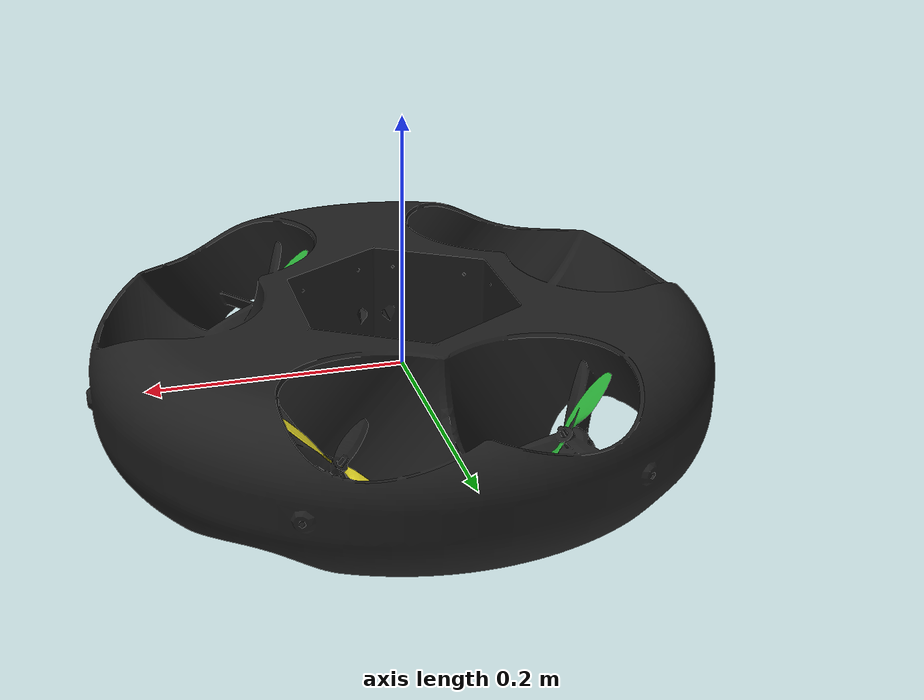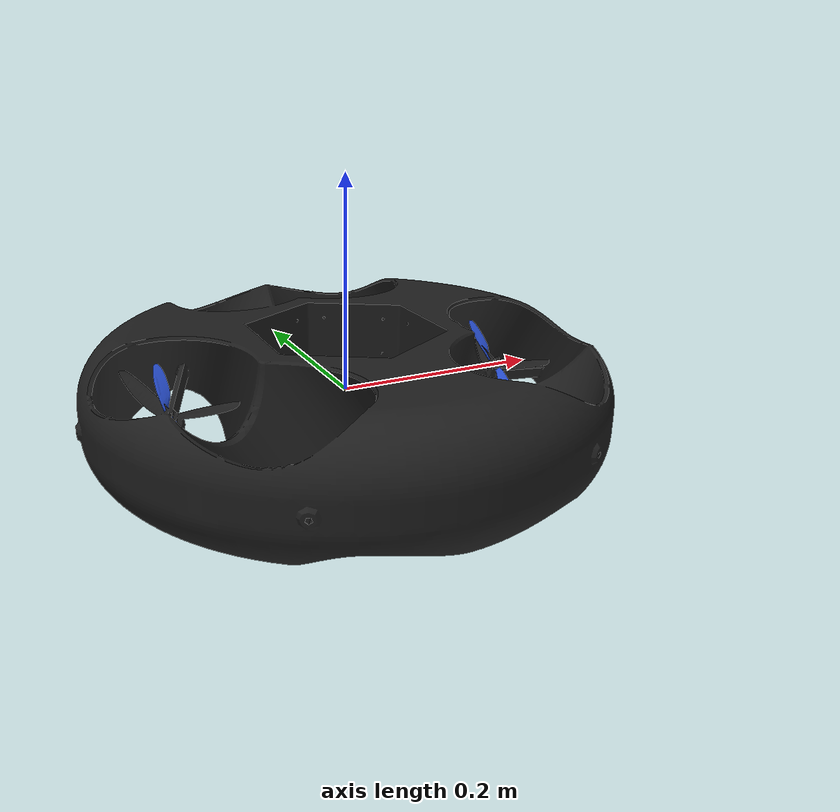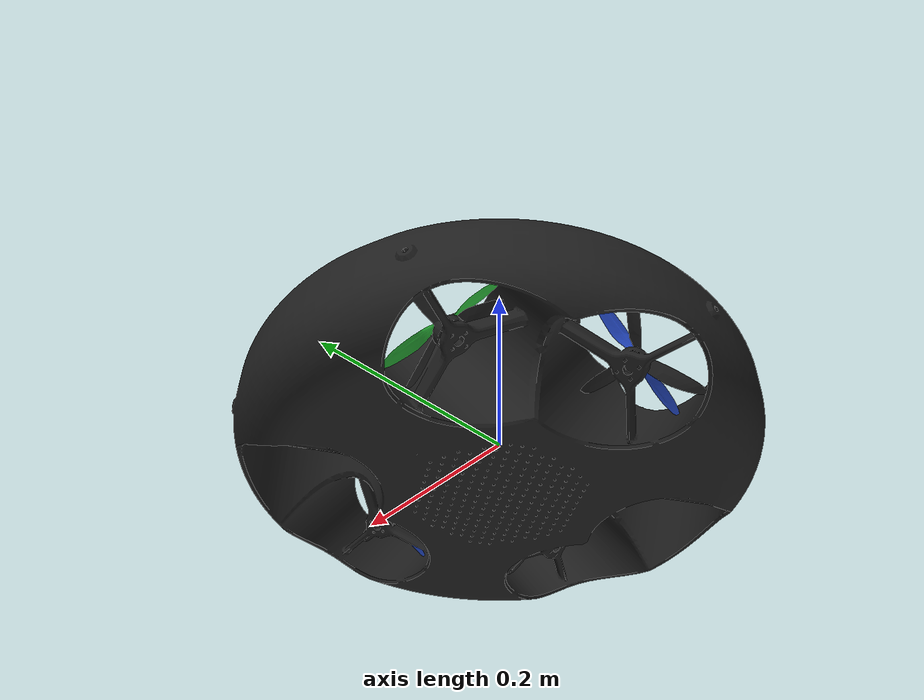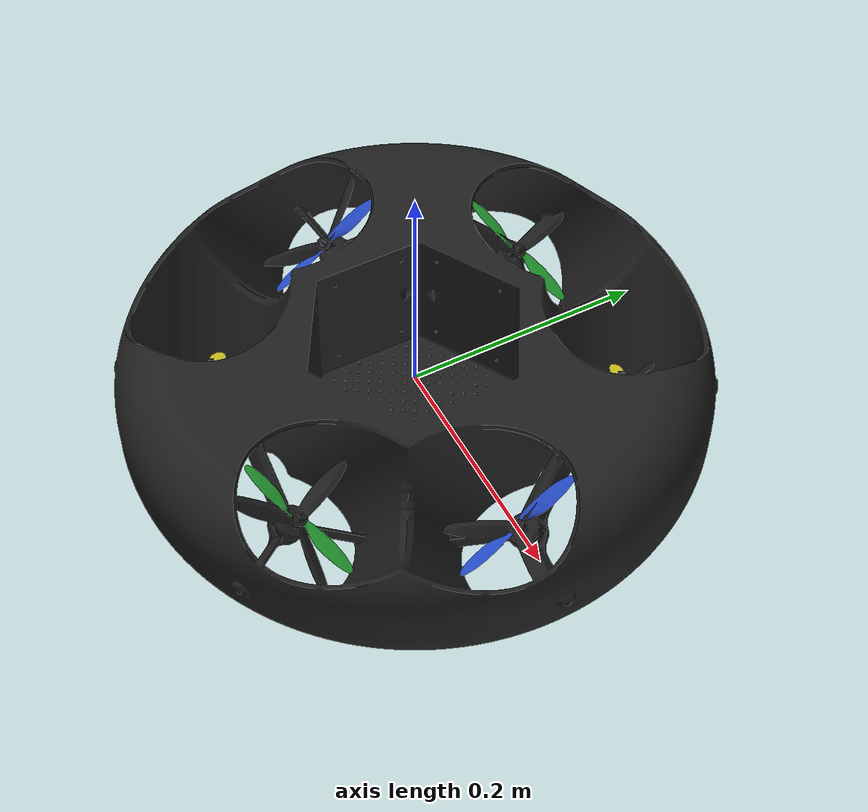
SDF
<?xml version="1.0" encoding="UTF-8"?>
<sdf version='1.9'>
  <model name='space_cobot'>
    <self_collide>false</self_collide>
    <static>false</static>
    <link name='base_link'>
      <velocity_decay>
        <linear>0</linear>
        <angular>0</angular>
      </velocity_decay>
      <pose>0 0 0 0 -0 0</pose>
      <inertial>
        <pose>0 0 0 0 -0 0</pose>
        <mass>3.4</mass>
        <inertia>
          <ixx>0.085225</ixx>
          <ixy>0</ixy>
          <ixz>0</ixz>
          <iyy>0.085225</iyy>
          <iyz>0</iyz>
          <izz>0.085225</izz>
        </inertia>
      </inertial>
      <visual name='base_link_inertia_visual'>
        <pose>0.0 0.0 0.0 0.0 0.0 -0.523598</pose>
        <geometry>
          <mesh>
            <scale>1.0 1.0 1.0</scale>
            <uri>model://space_cobot/meshes/cobot.dae</uri>
          </mesh>
        </geometry>
        <material>
          <script>
            <name>Gazebo/Black</name>
            <uri>file://media/materials/scripts/gazebo.material</uri>
          </script>
        </material>
      </visual>
      <gravity>0</gravity>
      <sensor name="air_pressure_sensor" type="air_pressure">
        <always_on>1</always_on>
        <update_rate>50</update_rate>
        <air_pressure>
          <pressure>
            <noise type="gaussian">
              <mean>0</mean>
              <stddev>0.01</stddev>
            </noise>
          </pressure>
        </air_pressure>
      </sensor>
      <sensor name="imu_sensor" type="imu">
        <always_on>1</always_on>
        <update_rate>250</update_rate>
        <imu>
          <angular_velocity>
            <x>
              <noise type="gaussian">
                <mean>0</mean>
                <stddev>0.00018665</stddev>
                <dynamic_bias_stddev>3.8785e-05</dynamic_bias_stddev>
                <dynamic_bias_correlation_time>1000</dynamic_bias_correlation_time>
              </noise>
            </x>
            <y>
              <noise type="gaussian">
                <mean>0</mean>
                <stddev>0.00018665</stddev>
                <dynamic_bias_stddev>3.8785e-05</dynamic_bias_stddev>
                <dynamic_bias_correlation_time>1000</dynamic_bias_correlation_time>
              </noise>
            </y>
            <z>
              <noise type="gaussian">
                <mean>0</mean>
                <stddev>0.00018665</stddev>
                <dynamic_bias_stddev>3.8785e-05</dynamic_bias_stddev>
                <dynamic_bias_correlation_time>1000</dynamic_bias_correlation_time>
              </noise>
            </z>
          </angular_velocity>
          <linear_acceleration>
            <x>
              <noise type="gaussian">
                <mean>0</mean>
                <stddev>0.00186</stddev>
                <dynamic_bias_stddev>0.006</dynamic_bias_stddev>
                <dynamic_bias_correlation_time>300</dynamic_bias_correlation_time>
              </noise>
            </x>
            <y>
              <noise type="gaussian">
                <mean>0</mean>
                <stddev>0.00186</stddev>
                <dynamic_bias_stddev>0.006</dynamic_bias_stddev>
                <dynamic_bias_correlation_time>300</dynamic_bias_correlation_time>
              </noise>
            </y>
            <z>
              <noise type="gaussian">
                <mean>0</mean>
                <stddev>0.00186</stddev>
                <dynamic_bias_stddev>0.006</dynamic_bias_stddev>
                <dynamic_bias_correlation_time>300</dynamic_bias_correlation_time>
              </noise>
            </z>
          </linear_acceleration>
        </imu>
      </sensor>
      <sensor name="navsat_sensor" type="navsat">
        <always_on>1</always_on>
        <update_rate>30</update_rate>
      </sensor>
    </link>

    <!-- Rotor 0 and Rotor 3 form a pair -->
    <link name='rotor_0'>
      <pose>-0.1655 0.0 0.0 0.0 -0.610865  1.570796 </pose>
      <inertial>
        <pose>0 0 0 0 -0 0</pose>
        <mass>0.005</mass>
        <inertia>
          <ixx>9.75e-07</ixx>
          <ixy>0</ixy>
          <ixz>0</ixz>
          <iyy>0.000273104</iyy>
          <iyz>0</iyz>
          <izz>0.000274004</izz>
        </inertia>
      </inertial>
      <collision name='rotor_0_collision'>
        <pose>0 0 0 0 -0 0</pose>
        <geometry>
          <cylinder>
            <length>0.005</length>
            <radius>0.064</radius>
          </cylinder>
        </geometry>
        <surface>
          <contact>
            <ode/>
          </contact>
        </surface>
      </collision>
      <visual name='rotor_0_visual'>
        <pose>0 0 0 0 -0 0</pose>
        <geometry>
          <mesh>
            <scale>0.45 0.45 0.45</scale>
            <uri>model://omnicopter/meshes/iris_prop_ccw.dae</uri>
          </mesh>
        </geometry>
        <material>
          <script>
            <name>Gazebo/Blue</name>
            <uri>file://media/materials/scripts/gazebo.material</uri>
          </script>
        </material>
      </visual>
      <gravity>false</gravity>
      <velocity_decay>
        <linear>0</linear>
        <angular>0</angular>
      </velocity_decay>
    </link>
    <joint name='rotor_0_joint' type='revolute'>
      <child>rotor_0</child>
      <parent>base_link</parent>
      <axis>
        <xyz>0 0 1</xyz>
        <limit>
          <lower>-1e+16</lower>
          <upper>1e+16</upper>
        </limit>
        <dynamics>
          <damping>0</damping>
          <spring_reference>0</spring_reference>
          <spring_stiffness>0</spring_stiffness>
        </dynamics>
      </axis>
    </joint>
    <plugin filename="gz-sim-reversible-multicopter-motor-model-system" name="gz::sim::systems::ReversibleMulticopterMotorModel">
      <jointName>rotor_0_joint</jointName>
      <linkName>rotor_0</linkName>

      <robotName>space_cobot_0</robotName>
      <commandSubTopic>motor_command</commandSubTopic>

      <a0ThrustConstant>2.123e-17 </a0ThrustConstant>
      <a1ThrustConstant>2.598e-04 </a1ThrustConstant>
      <a2ThrustConstant>0.0 </a2ThrustConstant>
      <a3ThrustConstant>1.112e-10 </a3ThrustConstant>

      <a0TorqueConstant>1.919e-19 </a0TorqueConstant>
      <a1TorqueConstant>7.019e-06 </a1TorqueConstant>
      <a2TorqueConstant>0.0 </a2TorqueConstant>
      <a3TorqueConstant>-3.425e-12 </a3TorqueConstant>

      <motorNumber>0</motorNumber>
      <motorType>velocity</motorType>
    </plugin>
    <link name='rotor_3'>
      <pose>0.1655 0.0 0.0 0.0 0.610865 -1.570796</pose>
      <inertial>
        <pose>0 0 0 0 -0 0</pose>
        <mass>0.005</mass>
        <inertia>
          <ixx>9.75e-07</ixx>
          <ixy>0</ixy>
          <ixz>0</ixz>
          <iyy>0.000273104</iyy>
          <iyz>0</iyz>
          <izz>0.000274004</izz>
        </inertia>
      </inertial>
      <collision name='rotor_3_collision'>
        <pose>0 0 0 0 -0 0</pose>
        <geometry>
          <cylinder>
            <length>0.005</length>
            <radius>0.064</radius>
          </cylinder>
        </geometry>
        <surface>
          <contact>
            <ode/>
          </contact>
        </surface>
      </collision>
      <visual name='rotor_3_visual'>
        <pose>0 0 0 0 -0 0</pose>
        <geometry>
          <mesh>
            <scale>0.45 0.45 0.45</scale>
            <uri>model://omnicopter/meshes/iris_prop_ccw.dae</uri>
          </mesh>
        </geometry>
        <material>
          <script>
            <name>Gazebo/Blue</name>
            <uri>file://media/materials/scripts/gazebo.material</uri>
          </script>
        </material>
      </visual>
      <gravity>0</gravity>
      <velocity_decay>
        <linear>0</linear>
        <angular>0</angular>
      </velocity_decay>
    </link>
    <joint name='rotor_3_joint' type='revolute'>
      <child>rotor_3</child>
      <parent>base_link</parent>
      <axis>
        <xyz>0 0 1</xyz>
        <limit>
          <lower>-1e+16</lower>
          <upper>1e+16</upper>
        </limit>
        <dynamics>
          <damping>0</damping>
          <spring_reference>0</spring_reference>
          <spring_stiffness>0</spring_stiffness>
        </dynamics>
      </axis>
    </joint>
    <plugin filename="gz-sim-reversible-multicopter-motor-model-system" name="gz::sim::systems::ReversibleMulticopterMotorModel">
      <jointName>rotor_3_joint</jointName>
      <linkName>rotor_3</linkName>

      <robotName>space_cobot_0</robotName>
      <commandSubTopic>motor_command</commandSubTopic>

      <a0ThrustConstant>2.123e-17 </a0ThrustConstant>
      <a1ThrustConstant>2.598e-04 </a1ThrustConstant>
      <a2ThrustConstant>0.0 </a2ThrustConstant>
      <a3ThrustConstant>1.112e-10 </a3ThrustConstant>

      <a0TorqueConstant>-1.919e-19 </a0TorqueConstant>
      <a1TorqueConstant>-7.019e-06 </a1TorqueConstant>
      <a2TorqueConstant>0.0 </a2TorqueConstant>
      <a3TorqueConstant>3.425e-12 </a3TorqueConstant>

      <motorNumber>3</motorNumber>
      <motorType>velocity</motorType>
    </plugin>

    <!-- Rotor 1 and Rotor 5 form a pair -->
    <link name='rotor_1'>
      <pose>-0.0827 0.1433 0.0 0.0 0.610865 0.523598</pose>
      <inertial>
        <pose>0 0 0 0 -0 0</pose>
        <mass>0.005</mass>
        <inertia>
          <ixx>9.75e-07</ixx>
          <ixy>0</ixy>
          <ixz>0</ixz>
          <iyy>0.000273104</iyy>
          <iyz>0</iyz>
          <izz>0.000274004</izz>
        </inertia>
      </inertial>
      <collision name='rotor_1_collision'>
        <pose>0 0 0 0 -0 0</pose>
        <geometry>
          <cylinder>
            <length>0.005</length>
            <radius>0.064</radius>
          </cylinder>
        </geometry>
        <surface>
          <contact>
            <ode/>
          </contact>
        </surface>
      </collision>
      <visual name='rotor_1_visual'>
        <pose>0 0 0 0 -0 0</pose>
        <geometry>
          <mesh>
            <scale>0.45 0.45 0.45</scale>
            <uri>model://omnicopter/meshes/iris_prop_ccw.dae</uri>
          </mesh>
        </geometry>
        <material>
          <script>
            <name>Gazebo/Green</name>
            <uri>file://media/materials/scripts/gazebo.material</uri>
          </script>
        </material>
      </visual>
      <gravity>0</gravity>
      <velocity_decay>
        <linear>0</linear>
        <angular>0</angular>
      </velocity_decay>
    </link>
    <joint name='rotor_1_joint' type='revolute'>
      <child>rotor_1</child>
      <parent>base_link</parent>
      <axis>
        <xyz> 0 0 1</xyz>
        <limit>
          <lower>-1e+16</lower>
          <upper>1e+16</upper>
        </limit>
        <dynamics>
          <damping>0</damping>
          <spring_reference>0</spring_reference>
          <spring_stiffness>0</spring_stiffness>
        </dynamics>
      </axis>
    </joint>
    <plugin filename="gz-sim-reversible-multicopter-motor-model-system" name="gz::sim::systems::ReversibleMulticopterMotorModel">
      <jointName>rotor_1_joint</jointName>
      <linkName>rotor_1</linkName>

      <robotName>space_cobot_0</robotName>
      <commandSubTopic>motor_command</commandSubTopic>

      <a0ThrustConstant>2.123e-17 </a0ThrustConstant>
      <a1ThrustConstant>2.598e-04 </a1ThrustConstant>
      <a2ThrustConstant>0.0 </a2ThrustConstant>
      <a3ThrustConstant>1.112e-10 </a3ThrustConstant>

      <a0TorqueConstant>-1.919e-19 </a0TorqueConstant>
      <a1TorqueConstant>-7.019e-06 </a1TorqueConstant>
      <a2TorqueConstant>0.0 </a2TorqueConstant>
      <a3TorqueConstant>3.425e-12 </a3TorqueConstant>

      <motorNumber>1</motorNumber>
      <motorType>velocity</motorType>
    </plugin>
    <link name='rotor_4'>
      <pose> 0.0827 -0.1433 0.0 0.0 -0.610865 -2.617993</pose>
      <inertial>
        <pose>0 0 0 0 -0 0</pose>
        <mass>0.005</mass>
        <inertia>
          <ixx>9.75e-07</ixx>
          <ixy>0</ixy>
          <ixz>0</ixz>
          <iyy>0.000273104</iyy>
          <iyz>0</iyz>
          <izz>0.000274004</izz>
        </inertia>
      </inertial>
      <collision name='rotor_4_collision'>
        <pose>0 0 0 0 -0 0</pose>
        <geometry>
          <cylinder>
            <length>0.005</length>
            <radius>0.064</radius>
          </cylinder>
        </geometry>
        <surface>
          <contact>
            <ode/>
          </contact>
        </surface>
      </collision>
      <visual name='rotor_4_visual'>
        <pose>0 0 0 0 -0 0</pose>
        <geometry>
          <mesh>
            <scale>0.45 0.45 0.45</scale>
            <uri>model://omnicopter/meshes/iris_prop_ccw.dae</uri>
          </mesh>
        </geometry>
        <material>
          <script>
            <name>Gazebo/Green</name>
            <uri>file://media/materials/scripts/gazebo.material</uri>
          </script>
        </material>
      </visual>
      <gravity>0</gravity>
      <velocity_decay>
        <linear>0</linear>
        <angular>0</angular>
      </velocity_decay>
    </link>
    <joint name='rotor_4_joint' type='revolute'>
      <child>rotor_4</child>
      <parent>base_link</parent>
      <axis>
        <xyz> 0 0 1</xyz>
        <limit>
          <lower>-1e+16</lower>
          <upper>1e+16</upper>
        </limit>
        <dynamics>
          <damping>0</damping>
          <spring_reference>0</spring_reference>
          <spring_stiffness>0</spring_stiffness>
        </dynamics>
      </axis>
    </joint>
    <plugin filename="gz-sim-reversible-multicopter-motor-model-system" name="gz::sim::systems::ReversibleMulticopterMotorModel">
      <jointName>rotor_4_joint</jointName>
      <linkName>rotor_4</linkName>

      <robotName>space_cobot_0</robotName>
      <commandSubTopic>motor_command</commandSubTopic>

      <a0ThrustConstant>2.123e-17 </a0ThrustConstant>
      <a1ThrustConstant>2.598e-04 </a1ThrustConstant>
      <a2ThrustConstant>0.0 </a2ThrustConstant>
      <a3ThrustConstant>1.112e-10 </a3ThrustConstant>

      <a0TorqueConstant>1.919e-19 </a0TorqueConstant>
      <a1TorqueConstant>7.019e-06 </a1TorqueConstant>
      <a2TorqueConstant>0.0 </a2TorqueConstant>
      <a3TorqueConstant>-3.425e-12 </a3TorqueConstant>

      <motorNumber>4</motorNumber>
      <motorType>velocity</motorType>
    </plugin>
    <!-- Rotor 3 and Rotor 6 form a pair -->
    <link name='rotor_2'>
      <pose> 0.0827 0.1433 0.0 0.0 -0.610865 -0.523598</pose>
      <inertial>
        <pose>0 0 0 0 -0 0</pose>
        <mass>0.005</mass>
        <inertia>
          <ixx>9.75e-07</ixx>
          <ixy>0</ixy>
          <ixz>0</ixz>
          <iyy>0.000273104</iyy>
          <iyz>0</iyz>
          <izz>0.000274004</izz>
        </inertia>
      </inertial>
      <collision name='rotor_2_collision'>
        <pose>0 0 0 0 -0 0</pose>
        <geometry>
          <cylinder>
            <length>0.005</length>
            <radius>0.064</radius>
          </cylinder>
        </geometry>
        <surface>
          <contact>
            <ode/>
          </contact>
        </surface>
      </collision>
      <visual name='rotor_2_visual'>
        <pose>0 0 0 0 -0 0</pose>
        <geometry>
          <mesh>
            <scale>0.45 0.45 0.45</scale>
            <uri>model://omnicopter/meshes/iris_prop_ccw.dae</uri>
          </mesh>
        </geometry>
        <material>
          <script>
            <name>Gazebo/Yellow</name>
            <uri>file://media/materials/scripts/gazebo.material</uri>
          </script>
        </material>
      </visual>
      <gravity>0</gravity>
      <velocity_decay>
        <linear>0</linear>
        <angular>0</angular>
      </velocity_decay>
    </link>
    <joint name='rotor_2_joint' type='revolute'>
      <child>rotor_2</child>
      <parent>base_link</parent>
      <axis>
        <xyz> 0 0 1</xyz>
        <limit>
          <lower>-1e+16</lower>
          <upper>1e+16</upper>
        </limit>
        <dynamics>
          <damping>0</damping>
          <spring_reference>0</spring_reference>
          <spring_stiffness>0</spring_stiffness>
        </dynamics>
      </axis>
    </joint>
    <plugin filename="gz-sim-reversible-multicopter-motor-model-system" name="gz::sim::systems::ReversibleMulticopterMotorModel">
      <jointName>rotor_2_joint</jointName>
      <linkName>rotor_2</linkName>

      <robotName>space_cobot_0</robotName>
      <commandSubTopic>motor_command</commandSubTopic>

      <a0ThrustConstant>2.123e-17 </a0ThrustConstant>
      <a1ThrustConstant>2.598e-04 </a1ThrustConstant>
      <a2ThrustConstant>0.0 </a2ThrustConstant>
      <a3ThrustConstant>1.112e-10 </a3ThrustConstant>

      <a0TorqueConstant>1.919e-19 </a0TorqueConstant>
      <a1TorqueConstant>7.019e-06 </a1TorqueConstant>
      <a2TorqueConstant>0.0 </a2TorqueConstant>
      <a3TorqueConstant>-3.425e-12 </a3TorqueConstant>

      <motorNumber>2</motorNumber>
      <motorType>velocity</motorType>
    </plugin>
    <link name='rotor_5'>
      <pose>-0.0827 -0.1433 0.0 0.0 0.610865 2.617993</pose>
      <inertial>
        <pose>0 0 0 0 -0 0</pose>
        <mass>0.005</mass>
        <inertia>
          <ixx>9.75e-07</ixx>
          <ixy>0</ixy>
          <ixz>0</ixz>
          <iyy>0.000273104</iyy>
          <iyz>0</iyz>
          <izz>0.000274004</izz>
        </inertia>
      </inertial>
      <collision name='rotor_5_collision'>
        <pose>0 0 0 0 -0 0</pose>
        <geometry>
          <cylinder>
            <length>0.005</length>
            <radius>0.064</radius>
          </cylinder>
        </geometry>
        <surface>
          <contact>
            <ode/>
          </contact>
        </surface>
      </collision>
      <visual name='rotor_5_visual'>
        <pose>0 0 0 0 -0 0</pose>
        <geometry>
          <mesh>
            <scale>0.45 0.45 0.45</scale>
            <uri>model://omnicopter/meshes/iris_prop_ccw.dae</uri>
          </mesh>
        </geometry>
        <material>
          <script>
            <name>Gazebo/Yellow</name>
            <uri>file://media/materials/scripts/gazebo.material</uri>
          </script>
        </material>
      </visual>
      <gravity>0</gravity>
      <velocity_decay>
        <linear>0</linear>
        <angular>0</angular>
      </velocity_decay>
    </link>
    <joint name='rotor_5_joint' type='revolute'>
      <child>rotor_5</child>
      <parent>base_link</parent>
      <axis>
        <xyz> 0 0 1</xyz>
        <limit>
          <lower>-1e+16</lower>
          <upper>1e+16</upper>
        </limit>
        <dynamics>
          <damping>0</damping>
          <spring_reference>0</spring_reference>
          <spring_stiffness>0</spring_stiffness>
        </dynamics>
      </axis>
    </joint>
    <plugin filename="gz-sim-reversible-multicopter-motor-model-system" name="gz::sim::systems::ReversibleMulticopterMotorModel">
      <jointName>rotor_5_joint</jointName>
      <linkName>rotor_5</linkName>

      <robotName>space_cobot_0</robotName>
      <commandSubTopic>motor_command</commandSubTopic>

      <a0ThrustConstant>2.123e-17 </a0ThrustConstant>
      <a1ThrustConstant>2.598e-04 </a1ThrustConstant>
      <a2ThrustConstant>0.0 </a2ThrustConstant>
      <a3ThrustConstant>1.112e-10 </a3ThrustConstant>

      <a0TorqueConstant>-1.919e-19 </a0TorqueConstant>
      <a1TorqueConstant>-7.019e-06 </a1TorqueConstant>
      <a2TorqueConstant>0.0 </a2TorqueConstant>
      <a3TorqueConstant>3.425e-12 </a3TorqueConstant>

      <motorNumber>5</motorNumber>
      <motorType>velocity</motorType>
    </plugin>

    <plugin filename="gz-sim-odometry-publisher-system" name="gz::sim::systems::OdometryPublisher">
      <dimensions> 3 </dimensions>
    </plugin>

    <plugin name="gz::sim::systems::ForceTorque" filename="gz-sim-forcetorque-system">
      <topic>/world/default/model/space_cobot/link/base_link/wrench</topic>
      <update_rate>250</update_rate>
    </plugin>

  </model>
</sdf>
